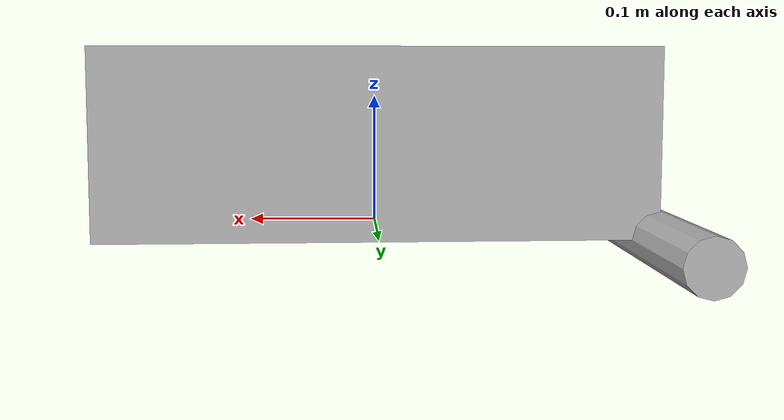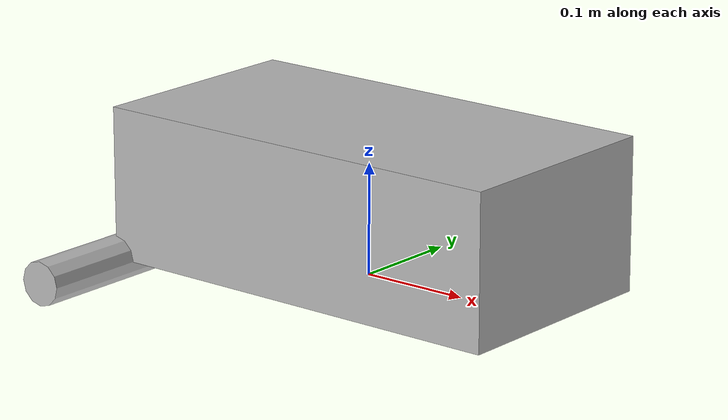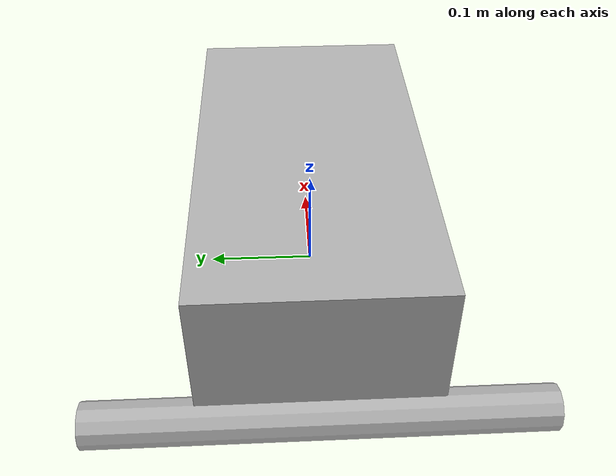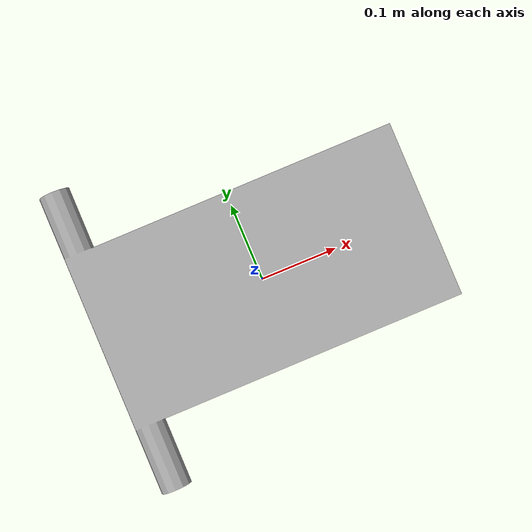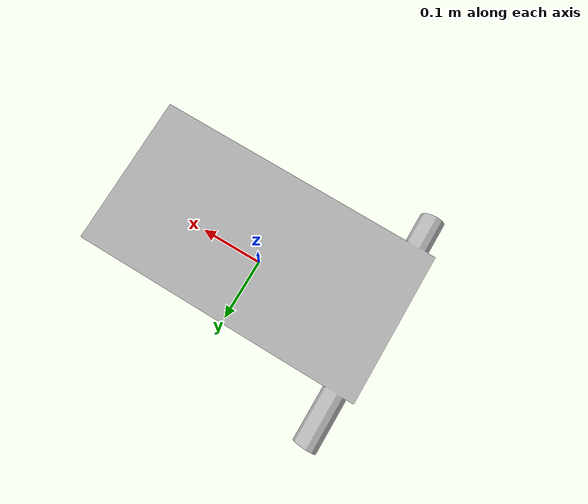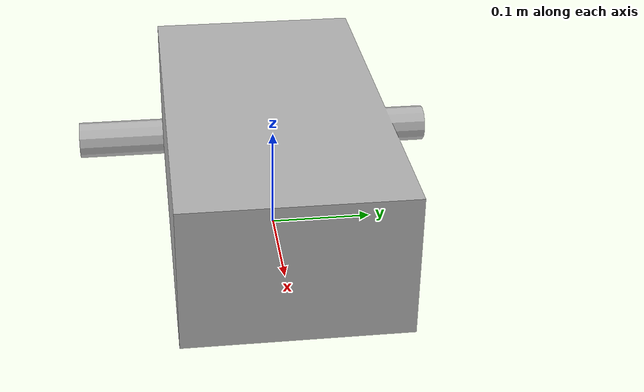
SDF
<?xml version="1.0"?>
<sdf version="1.5">
  <model name="agv">
    <link name="link">
      <gravity>false</gravity>
      <pose>0 0 0 0 0 0</pose>
      <collision name="collision">
        <geometry>
          <mesh>
            <uri>model://agv/agv.STL</uri>
          </mesh>
        </geometry>
      </collision>
      <visual name="visual">
        <geometry>
          <mesh>
            <uri>model://agv/agv.STL</uri>
          </mesh>
        </geometry>
      </visual>
    </link>
  </model>
</sdf>
